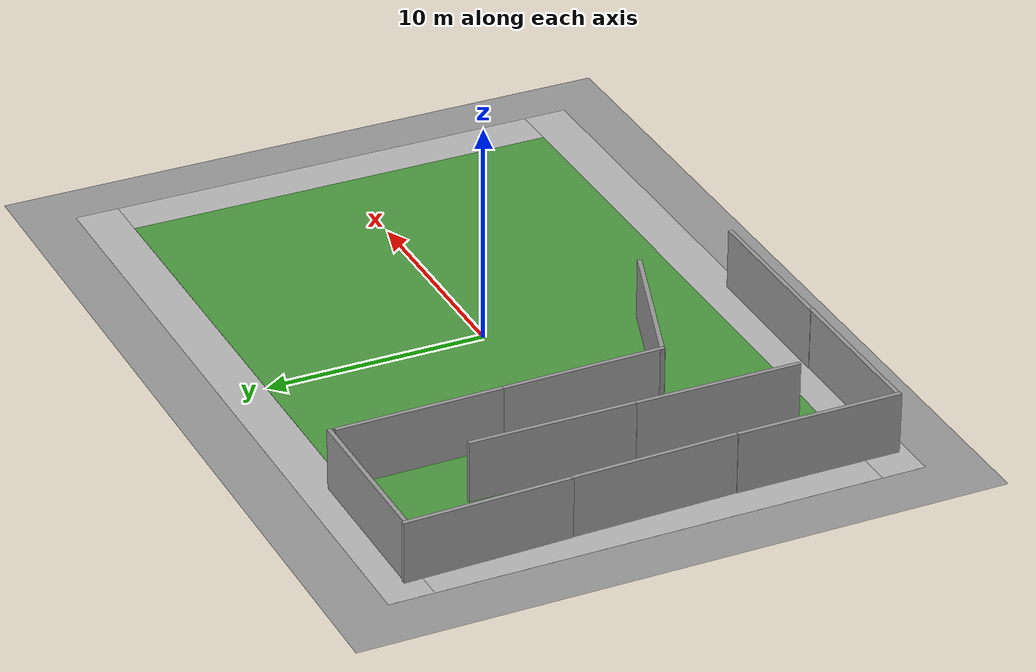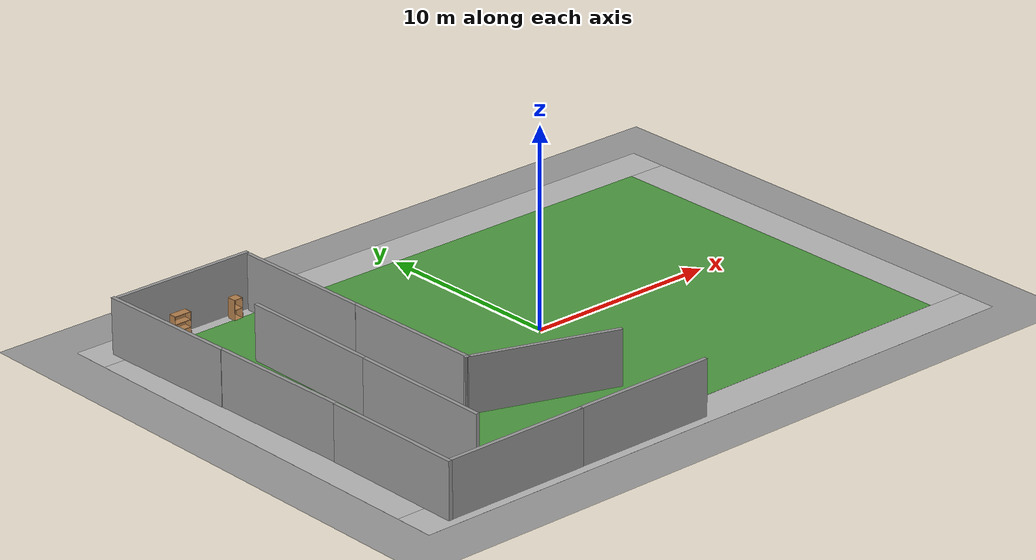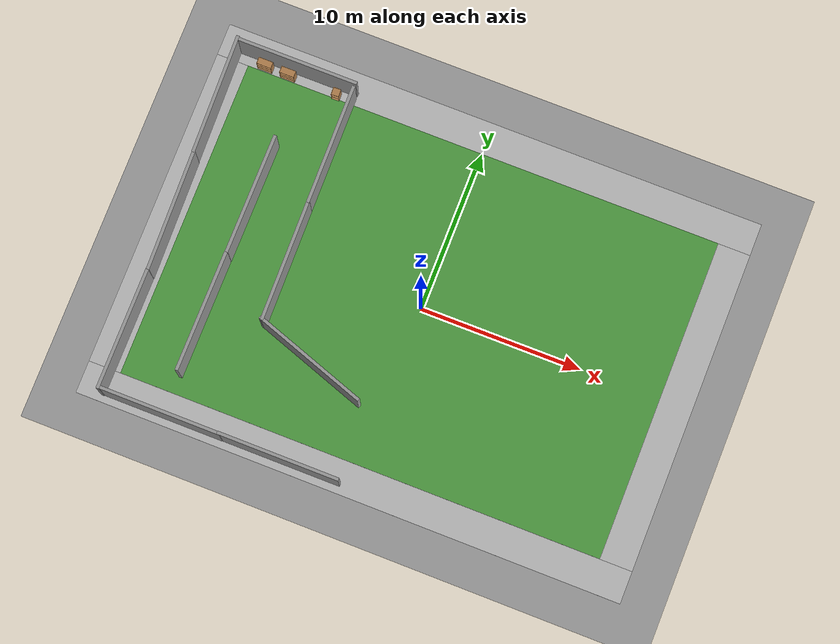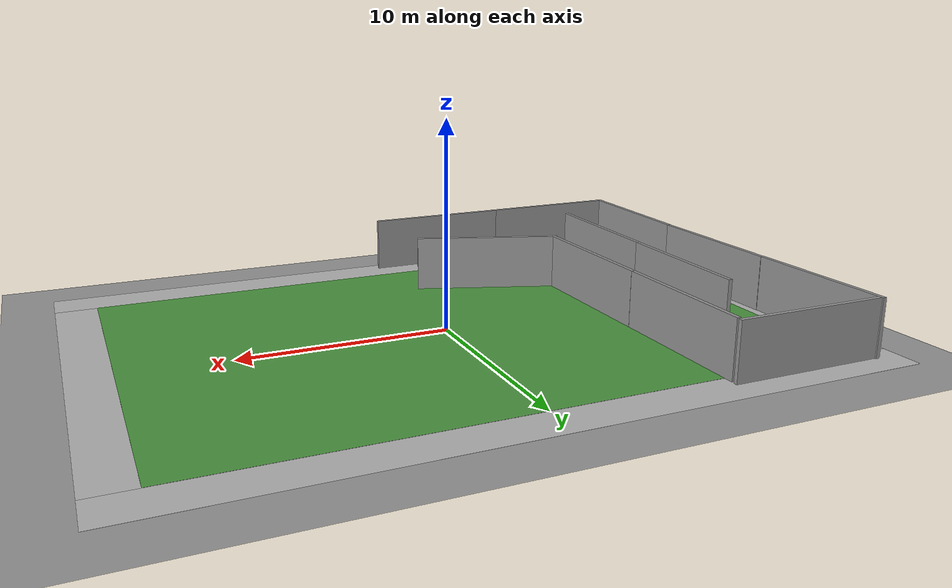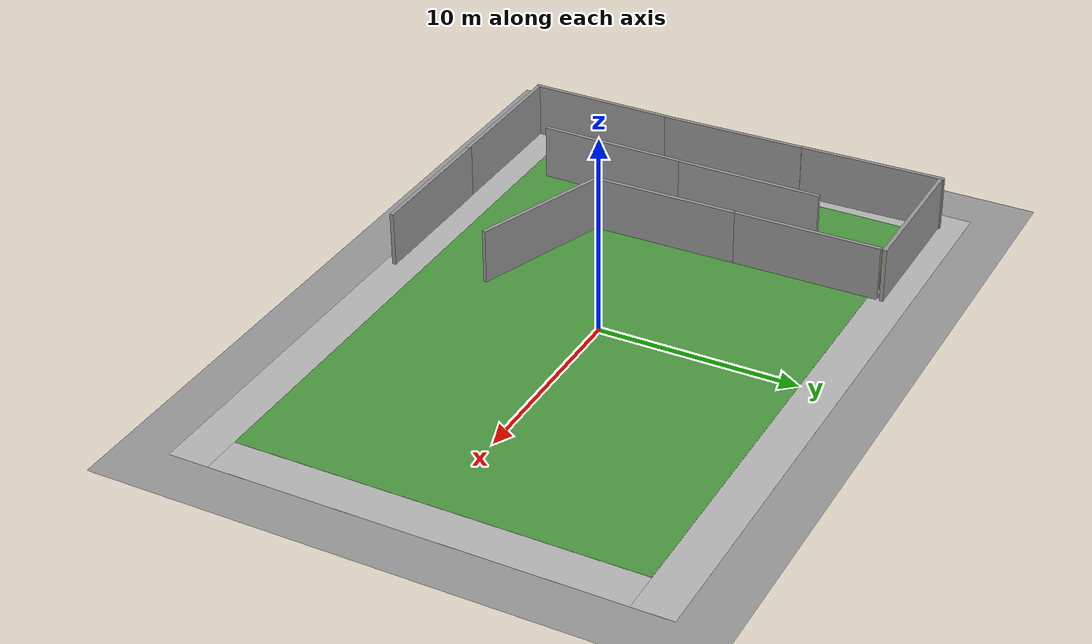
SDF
<sdf version="1.6">
 <world name="default">
  <light name="sun" type="directional">
   <pose>0 0 10 0 -0 0</pose>
   <diffuse>0.8 0.8 0.8 1</diffuse>
   <specular>0.2 0.2 0.2 1</specular>
   <attenuation>
    <range>1000</range>
    <constant>0.9</constant>
    <linear>0.01</linear>
    <quadratic>0.001</quadratic>
   </attenuation>
   <direction>0.5 0.1 -0.9</direction>
  </light>
  <scene><ambient>0.4 0.4 0.4 1</ambient><background>0.7 0.7 0.7 1</background><shadows>1</shadows></scene>
  <physics name="default_physics" default="0" type="ode">
   <max_step_size>0.01</max_step_size>
   <real_time_factor>1</real_time_factor>
   <real_time_update_rate>100</real_time_update_rate>
  </physics>
  <model name="ground_plane_0">
   <static>1</static>
   <link name="link">
    <collision name="collision">
     <geometry><plane><normal>0 0 1</normal><size>100 100</size></plane></geometry>
     <surface><friction><ode><mu>100</mu><mu2>50</mu2></ode></friction></surface>
    </collision>
    <visual name="visual">
     <cast_shadows>0</cast_shadows>
     <geometry><plane><normal>0 0 1</normal><size>100 100</size></plane></geometry>
     <material>
      <script><uri>file://media/materials/scripts/gazebo.material</uri><name>Gazebo/Grey</name></script>
     </material>
    </visual>
    <velocity_decay><linear>0</linear><angular>0</angular></velocity_decay>
   </link>
   <pose>0.497681 0 0 0 -0 0</pose>
  </model>
  <gravity>0 0 -9.8</gravity>
  <magnetic_field>6e-06 2.3e-05 -4.2e-05</magnetic_field>
  <atmosphere type="adiabatic"/>
  <spherical_coordinates>
   <surface_model>EARTH_WGS84</surface_model>
   <latitude_deg>0</latitude_deg>
   <longitude_deg>0</longitude_deg>
   <elevation>0</elevation>
   <heading_deg>0</heading_deg>
  </spherical_coordinates>
  <model name="robocup_3d_field">
   <static>1</static>
   <link name="field">
    <pose>0 0 0.01 0 -0 0</pose>
    <collision name="collision">
     <geometry><plane><normal>0 0 1</normal><size>30 20</size></plane></geometry>
     <surface><friction><ode><mu>100</mu><mu2>50</mu2></ode></friction></surface>
    </collision>
    <visual name="base1">
     <pose>0 11 0.001 0 -0 0</pose>
     <cast_shadows>0</cast_shadows>
     <geometry><plane><normal>0 0 1</normal><size>34 2</size></plane></geometry>
     <material>
      <script>
       <uri>model://robocup_3Dsim_field/materials/scripts/</uri>
       <uri>model://robocup_3Dsim_field/materials/textures/</uri>
       <name>RoboCup/FieldBorder</name>
      </script>
     </material>
    </visual>
    <visual name="base2">
     <pose>0 -11 0.001 0 -0 0</pose>
     <cast_shadows>0</cast_shadows>
     <geometry><plane><normal>0 0 1</normal><size>34 2</size></plane></geometry>
     <material>
      <script>
       <uri>model://robocup_3Dsim_field/materials/scripts/</uri>
       <uri>model://robocup_3Dsim_field/materials/textures/</uri>
       <name>RoboCup/FieldBorder</name>
      </script>
     </material>
    </visual>
    <visual name="base3">
     <pose>16 0 0.001 0 -0 0</pose>
     <cast_shadows>0</cast_shadows>
     <geometry><plane><normal>0 0 1</normal><size>2 20</size></plane></geometry>
     <material>
      <script>
       <uri>model://robocup_3Dsim_field/materials/scripts/</uri>
       <uri>model://robocup_3Dsim_field/materials/textures/</uri>
       <name>RoboCup/FieldBorder</name>
      </script>
     </material>
    </visual>
    <visual name="base4">
     <pose>-16 0 0.001 0 -0 0</pose>
     <cast_shadows>0</cast_shadows>
     <geometry><plane><normal>0 0 1</normal><size>2 20</size></plane></geometry>
     <material>
      <script>
       <uri>model://robocup_3Dsim_field/materials/scripts/</uri>
       <uri>model://robocup_3Dsim_field/materials/textures/</uri>
       <name>RoboCup/FieldBorder</name>
      </script>
     </material>
    </visual>
    <visual name="carpet">
     <cast_shadows>0</cast_shadows>
     <geometry><plane><normal>0 0 1</normal><size>30 20</size></plane></geometry>
     <material>
      <script>
       <uri>model://robocup_3Dsim_field/materials/scripts/</uri>
       <uri>model://robocup_3Dsim_field/materials/textures/</uri>
       <name>RoboCup/Grass</name>
      </script>
     </material>
    </visual>
   </link>
   <pose>-0.034817 0.033103 0 0 -0 0</pose>
  </model>
  <model name="grey_wall">
   <static>1</static>
   <link name="link">
    <pose>0 0 1.4 0 -0 0</pose>
    <collision name="collision"><geometry><box><size>7.5 0.2 2.8</size></box></geometry></collision>
    <visual name="visual">
     <cast_shadows>0</cast_shadows>
     <geometry><box><size>7.5 0.2 2.8</size></box></geometry>
     <material>
      <script>
       <uri>model://grey_wall/materials/scripts</uri>
       <uri>model://grey_wall/materials/textures</uri>
       <name>vrc/grey_wall</name>
      </script>
     </material>
    </visual>
   </link>
   <pose>-15.718 7.10843 0 0 -0 1.59609</pose>
  </model>
  <model name="grey_wall_0">
   <static>1</static>
   <link name="link">
    <pose>0 0 1.4 0 -0 0</pose>
    <collision name="collision"><geometry><box><size>7.5 0.2 2.8</size></box></geometry></collision>
    <visual name="visual">
     <cast_shadows>0</cast_shadows>
     <geometry><box><size>7.5 0.2 2.8</size></box></geometry>
     <material>
      <script>
       <uri>model://grey_wall/materials/scripts</uri>
       <uri>model://grey_wall/materials/textures</uri>
       <name>vrc/grey_wall</name>
      </script>
     </material>
    </visual>
   </link>
   <pose>-15.4583 -7.80885 0 0 -0 1.5684</pose>
  </model>
  <model name="grey_wall_1">
   <static>1</static>
   <link name="link">
    <pose>0 0 1.4 0 -0 0</pose>
    <collision name="collision"><geometry><box><size>7.5 0.2 2.8</size></box></geometry></collision>
    <visual name="visual">
     <cast_shadows>0</cast_shadows>
     <geometry><box><size>7.5 0.2 2.8</size></box></geometry>
     <material>
      <script>
       <uri>model://grey_wall/materials/scripts</uri>
       <uri>model://grey_wall/materials/textures</uri>
       <name>vrc/grey_wall</name>
      </script>
     </material>
    </visual>
   </link>
   <pose>-11.6069 -5.18939 0 0 0 -1.57802</pose>
  </model>
  <model name="grey_wall_2">
   <static>1</static>
   <link name="link">
    <pose>0 0 1.4 0 -0 0</pose>
    <collision name="collision"><geometry><box><size>7.5 0.2 2.8</size></box></geometry></collision>
    <visual name="visual">
     <cast_shadows>0</cast_shadows>
     <geometry><box><size>7.5 0.2 2.8</size></box></geometry>
     <material>
      <script>
       <uri>model://grey_wall/materials/scripts</uri>
       <uri>model://grey_wall/materials/textures</uri>
       <name>vrc/grey_wall</name>
      </script>
     </material>
    </visual>
   </link>
   <pose>-11.6691 -11.4346 0 0 -0 0</pose>
  </model>
  <model name="grey_wall_3">
   <static>1</static>
   <link name="link">
    <pose>0 0 1.4 0 -0 0</pose>
    <collision name="collision"><geometry><box><size>7.5 0.2 2.8</size></box></geometry></collision>
    <visual name="visual">
     <cast_shadows>0</cast_shadows>
     <geometry><box><size>7.5 0.2 2.8</size></box></geometry>
     <material>
      <script>
       <uri>model://grey_wall/materials/scripts</uri>
       <uri>model://grey_wall/materials/textures</uri>
       <name>vrc/grey_wall</name>
      </script>
     </material>
    </visual>
   </link>
   <pose>-15.5167 -0.330274 0 0 0 -1.54826</pose>
  </model>
  <model name="grey_wall_4">
   <static>1</static>
   <link name="link">
    <pose>0 0 1.4 0 -0 0</pose>
    <collision name="collision"><geometry><box><size>7.5 0.2 2.8</size></box></geometry></collision>
    <visual name="visual">
     <cast_shadows>0</cast_shadows>
     <geometry><box><size>7.5 0.2 2.8</size></box></geometry>
     <material>
      <script>
       <uri>model://grey_wall/materials/scripts</uri>
       <uri>model://grey_wall/materials/textures</uri>
       <name>vrc/grey_wall</name>
      </script>
     </material>
    </visual>
   </link>
   <pose>-11.5413 2.29725 0 0 -0 1.56407</pose>
  </model>
  <model name="grey_wall_5">
   <static>1</static>
   <link name="link">
    <pose>0 0 1.4 0 -0 0</pose>
    <collision name="collision"><geometry><box><size>7.5 0.2 2.8</size></box></geometry></collision>
    <visual name="visual">
     <cast_shadows>0</cast_shadows>
     <geometry><box><size>7.5 0.2 2.8</size></box></geometry>
     <material>
      <script>
       <uri>model://grey_wall/materials/scripts</uri>
       <uri>model://grey_wall/materials/textures</uri>
       <name>vrc/grey_wall</name>
      </script>
     </material>
    </visual>
   </link>
   <pose>-8.29283 6.73357 0 0 -0 1.58017</pose>
  </model>
  <model name="grey_wall_6">
   <static>1</static>
   <link name="link">
    <pose>0 0 1.4 0 -0 0</pose>
    <collision name="collision"><geometry><box><size>7.5 0.2 2.8</size></box></geometry></collision>
    <visual name="visual">
     <cast_shadows>0</cast_shadows>
     <geometry><box><size>7.5 0.2 2.8</size></box></geometry>
     <material>
      <script>
       <uri>model://grey_wall/materials/scripts</uri>
       <uri>model://grey_wall/materials/textures</uri>
       <name>vrc/grey_wall</name>
      </script>
     </material>
    </visual>
   </link>
   <pose>-11.9664 10.6972 0 0 -0 0</pose>
  </model>
  <model name="grey_wall_7">
   <static>1</static>
   <link name="link">
    <pose>0 0 1.4 0 -0 0</pose>
    <collision name="collision"><geometry><box><size>7.5 0.2 2.8</size></box></geometry></collision>
    <visual name="visual">
     <cast_shadows>0</cast_shadows>
     <geometry><box><size>7.5 0.2 2.8</size></box></geometry>
     <material>
      <script>
       <uri>model://grey_wall/materials/scripts</uri>
       <uri>model://grey_wall/materials/textures</uri>
       <name>vrc/grey_wall</name>
      </script>
     </material>
    </visual>
   </link>
   <pose>-8.20933 -0.682161 0 0 -0 1.58224</pose>
  </model>
  <model name="grey_wall_8">
   <static>1</static>
   <link name="link">
    <pose>0 0 1.4 0 -0 0</pose>
    <collision name="collision"><geometry><box><size>7.5 0.2 2.8</size></box></geometry></collision>
    <visual name="visual">
     <cast_shadows>0</cast_shadows>
     <geometry><box><size>7.5 0.2 2.8</size></box></geometry>
     <material>
      <script>
       <uri>model://grey_wall/materials/scripts</uri>
       <uri>model://grey_wall/materials/textures</uri>
       <name>vrc/grey_wall</name>
      </script>
     </material>
    </visual>
   </link>
   <pose>-4.77089 -5.51435 0 0 0 -0.333075</pose>
  </model>
  <model name="grey_wall_9">
   <static>1</static>
   <link name="link">
    <pose>0 0 1.4 0 -0 0</pose>
    <collision name="collision"><geometry><box><size>7.5 0.2 2.8</size></box></geometry></collision>
    <visual name="visual">
     <cast_shadows>0</cast_shadows>
     <geometry><box><size>7.5 0.2 2.8</size></box></geometry>
     <material>
      <script>
       <uri>model://grey_wall/materials/scripts</uri>
       <uri>model://grey_wall/materials/textures</uri>
       <name>vrc/grey_wall</name>
      </script>
     </material>
    </visual>
   </link>
   <pose>-4.35397 -11.4181 0 0 -0 0</pose>
  </model>
  <model name="bookshelf_0">
   <static>1</static>
   <link name="link">
    <inertial><mass>1</mass></inertial>
    <collision name="back">
     <pose>0 0.005 0.6 0 -0 0</pose>
     <geometry><box><size>0.9 0.01 1.2</size></box></geometry>
    </collision>
    <visual name="visual1">
     <pose>0 0.005 0.6 0 -0 0</pose>
     <geometry><box><size>0.9 0.01 1.2</size></box></geometry>
     <material>
      <script><uri>file://media/materials/scripts/gazebo.material</uri><name>Gazebo/Wood</name></script>
     </material>
    </visual>
    <collision name="left_side">
     <pose>0.45 -0.195 0.6 0 -0 0</pose>
     <geometry><box><size>0.02 0.4 1.2</size></box></geometry>
    </collision>
    <visual name="visual2">
     <pose>0.45 -0.195 0.6 0 -0 0</pose>
     <geometry><box><size>0.02 0.4 1.2</size></box></geometry>
     <material>
      <script><uri>file://media/materials/scripts/gazebo.material</uri><name>Gazebo/Wood</name></script>
     </material>
    </visual>
    <collision name="right_side">
     <pose>-0.45 -0.195 0.6 0 -0 0</pose>
     <geometry><box><size>0.02 0.4 1.2</size></box></geometry>
    </collision>
    <visual name="visual3">
     <pose>-0.45 -0.195 0.6 0 -0 0</pose>
     <geometry><box><size>0.02 0.4 1.2</size></box></geometry>
     <material>
      <script><uri>file://media/materials/scripts/gazebo.material</uri><name>Gazebo/Wood</name></script>
     </material>
    </visual>
    <collision name="bottom">
     <pose>0 -0.195 0.03 0 -0 0</pose>
     <geometry><box><size>0.88 0.4 0.06</size></box></geometry>
    </collision>
    <visual name="visual4">
     <pose>0 -0.195 0.03 0 -0 0</pose>
     <geometry><box><size>0.88 0.4 0.06</size></box></geometry>
     <material>
      <script><uri>file://media/materials/scripts/gazebo.material</uri><name>Gazebo/Wood</name></script>
     </material>
    </visual>
    <collision name="top">
     <pose>0 -0.195 1.19 0 -0 0</pose>
     <geometry><box><size>0.88 0.4 0.02</size></box></geometry>
    </collision>
    <visual name="visual5">
     <pose>0 -0.195 1.19 0 -0 0</pose>
     <geometry><box><size>0.88 0.4 0.02</size></box></geometry>
     <material>
      <script><uri>file://media/materials/scripts/gazebo.material</uri><name>Gazebo/Wood</name></script>
     </material>
    </visual>
    <collision name="low_shelf">
     <pose>0 -0.195 0.43 0 -0 0</pose>
     <geometry><box><size>0.88 0.4 0.02</size></box></geometry>
    </collision>
    <visual name="visual6">
     <pose>0 -0.195 0.43 0 -0 0</pose>
     <geometry><box><size>0.88 0.4 0.02</size></box></geometry>
     <material>
      <script><uri>file://media/materials/scripts/gazebo.material</uri><name>Gazebo/Wood</name></script>
     </material>
    </visual>
    <collision name="high_shelf">
     <pose>0 -0.195 0.8 0 -0 0</pose>
     <geometry><box><size>0.88 0.4 0.02</size></box></geometry>
    </collision>
    <visual name="visual7">
     <pose>0 -0.195 0.8 0 -0 0</pose>
     <geometry><box><size>0.88 0.4 0.02</size></box></geometry>
     <material>
      <script><uri>file://media/materials/scripts/gazebo.material</uri><name>Gazebo/Wood</name></script>
     </material>
    </visual>
   </link>
   <pose>-13.9816 10.4779 0 0 -0 0</pose>
  </model>
  <model name="bookshelf_1">
   <static>1</static>
   <link name="link">
    <inertial><mass>1</mass></inertial>
    <collision name="back">
     <pose>0 0.005 0.6 0 -0 0</pose>
     <geometry><box><size>0.9 0.01 1.2</size></box></geometry>
    </collision>
    <visual name="visual1">
     <pose>0 0.005 0.6 0 -0 0</pose>
     <geometry><box><size>0.9 0.01 1.2</size></box></geometry>
     <material>
      <script><uri>file://media/materials/scripts/gazebo.material</uri><name>Gazebo/Wood</name></script>
     </material>
    </visual>
    <collision name="left_side">
     <pose>0.45 -0.195 0.6 0 -0 0</pose>
     <geometry><box><size>0.02 0.4 1.2</size></box></geometry>
    </collision>
    <visual name="visual2">
     <pose>0.45 -0.195 0.6 0 -0 0</pose>
     <geometry><box><size>0.02 0.4 1.2</size></box></geometry>
     <material>
      <script><uri>file://media/materials/scripts/gazebo.material</uri><name>Gazebo/Wood</name></script>
     </material>
    </visual>
    <collision name="right_side">
     <pose>-0.45 -0.195 0.6 0 -0 0</pose>
     <geometry><box><size>0.02 0.4 1.2</size></box></geometry>
    </collision>
    <visual name="visual3">
     <pose>-0.45 -0.195 0.6 0 -0 0</pose>
     <geometry><box><size>0.02 0.4 1.2</size></box></geometry>
     <material>
      <script><uri>file://media/materials/scripts/gazebo.material</uri><name>Gazebo/Wood</name></script>
     </material>
    </visual>
    <collision name="bottom">
     <pose>0 -0.195 0.03 0 -0 0</pose>
     <geometry><box><size>0.88 0.4 0.06</size></box></geometry>
    </collision>
    <visual name="visual4">
     <pose>0 -0.195 0.03 0 -0 0</pose>
     <geometry><box><size>0.88 0.4 0.06</size></box></geometry>
     <material>
      <script><uri>file://media/materials/scripts/gazebo.material</uri><name>Gazebo/Wood</name></script>
     </material>
    </visual>
    <collision name="top">
     <pose>0 -0.195 1.19 0 -0 0</pose>
     <geometry><box><size>0.88 0.4 0.02</size></box></geometry>
    </collision>
    <visual name="visual5">
     <pose>0 -0.195 1.19 0 -0 0</pose>
     <geometry><box><size>0.88 0.4 0.02</size></box></geometry>
     <material>
      <script><uri>file://media/materials/scripts/gazebo.material</uri><name>Gazebo/Wood</name></script>
     </material>
    </visual>
    <collision name="low_shelf">
     <pose>0 -0.195 0.43 0 -0 0</pose>
     <geometry><box><size>0.88 0.4 0.02</size></box></geometry>
    </collision>
    <visual name="visual6">
     <pose>0 -0.195 0.43 0 -0 0</pose>
     <geometry><box><size>0.88 0.4 0.02</size></box></geometry>
     <material>
      <script><uri>file://media/materials/scripts/gazebo.material</uri><name>Gazebo/Wood</name></script>
     </material>
    </visual>
    <collision name="high_shelf">
     <pose>0 -0.195 0.8 0 -0 0</pose>
     <geometry><box><size>0.88 0.4 0.02</size></box></geometry>
    </collision>
    <visual name="visual7">
     <pose>0 -0.195 0.8 0 -0 0</pose>
     <geometry><box><size>0.88 0.4 0.02</size></box></geometry>
     <material>
      <script><uri>file://media/materials/scripts/gazebo.material</uri><name>Gazebo/Wood</name></script>
     </material>
    </visual>
   </link>
   <pose>-12.5105 10.4565 0 0 -0 0</pose>
  </model>
  <model name="cabinet">
   <static>1</static>
   <link name="cabinet_bottom_plate">
    <inertial>
     <pose>0 0 -1 0 -0 0</pose>
     <inertia><ixx>2.05</ixx><ixy>0</ixy><ixz>0</ixz><iyy>2.05</iyy><iyz>0</iyz><izz>2.05</izz></inertia>
     <mass>25</mass>
    </inertial>
    <collision name="cabinet_bottom_plate_geom">
     <pose>0 0 0.01 0 -0 0</pose>
     <geometry><box><size>0.45 0.45 0.02</size></box></geometry>
    </collision>
    <visual name="cabinet_bottom_plate_geom_visual">
     <pose>0 0 0.01 0 -0 0</pose>
     <geometry><box><size>0.45 0.45 0.02</size></box></geometry>
     <material>
      <script><uri>file://media/materials/scripts/gazebo.material</uri><name>Gazebo/Wood</name></script>
     </material>
    </visual>
    <collision name="cabinet_bottom_plate_geom_cabinet_back_plate">
     <pose>0.235 0 0.51 0 -0 0</pose>
     <geometry><box><size>0.02 0.45 1.02</size></box></geometry>
    </collision>
    <visual name="cabinet_bottom_plate_geom_cabinet_back_plate_visual">
     <pose>0.235 0 0.51 0 -0 0</pose>
     <geometry><box><size>0.02 0.45 1.02</size></box></geometry>
     <material>
      <script><uri>file://media/materials/scripts/gazebo.material</uri><name>Gazebo/Wood</name></script>
     </material>
    </visual>
    <collision name="cabinet_bottom_plate_geom_cabinet_left_plate">
     <pose>0 0.235 0.51 0 -0 0</pose>
     <geometry><box><size>0.45 0.02 1.02</size></box></geometry>
    </collision>
    <visual name="cabinet_bottom_plate_geom_cabinet_left_plate_visual">
     <pose>0 0.235 0.51 0 -0 0</pose>
     <geometry><box><size>0.45 0.02 1.02</size></box></geometry>
     <material>
      <script><uri>file://media/materials/scripts/gazebo.material</uri><name>Gazebo/Wood</name></script>
     </material>
    </visual>
    <collision name="cabinet_bottom_plate_geom_cabinet_middle_plate">
     <pose>0 0 0.51 0 -0 0</pose>
     <geometry><box><size>0.45 0.45 0.02</size></box></geometry>
    </collision>
    <visual name="cabinet_bottom_plate_geom_cabinet_middle_plate_visual">
     <pose>0 0 0.51 0 -0 0</pose>
     <geometry><box><size>0.45 0.45 0.02</size></box></geometry>
     <material>
      <script><uri>file://media/materials/scripts/gazebo.material</uri><name>Gazebo/Wood</name></script>
     </material>
    </visual>
    <collision name="cabinet_bottom_plate_geom_cabinet_right_plate">
     <pose>0 -0.235 0.51 0 -0 0</pose>
     <geometry><box><size>0.45 0.02 1.02</size></box></geometry>
    </collision>
    <visual name="cabinet_bottom_plate_geom_cabinet_right_plate_visual">
     <pose>0 -0.235 0.51 0 -0 0</pose>
     <geometry><box><size>0.45 0.02 1.02</size></box></geometry>
     <material>
      <script><uri>file://media/materials/scripts/gazebo.material</uri><name>Gazebo/Wood</name></script>
     </material>
    </visual>
    <collision name="cabinet_bottom_plate_geom_cabinet_top_plate">
     <pose>0 0 1.01 0 -0 0</pose>
     <geometry><box><size>0.45 0.45 0.02</size></box></geometry>
    </collision>
    <visual name="cabinet_bottom_plate_geom_cabinet_top_plate_visual">
     <pose>0 0 1.01 0 -0 0</pose>
     <geometry><box><size>0.45 0.45 0.02</size></box></geometry>
     <material>
      <script><uri>file://media/materials/scripts/gazebo.material</uri><name>Gazebo/Wood</name></script>
     </material>
    </visual>
   </link>
   <pose>-9.3965 10.1866 0.008283 0 -0 1.60283</pose>
  </model>
 </world>
</sdf>
